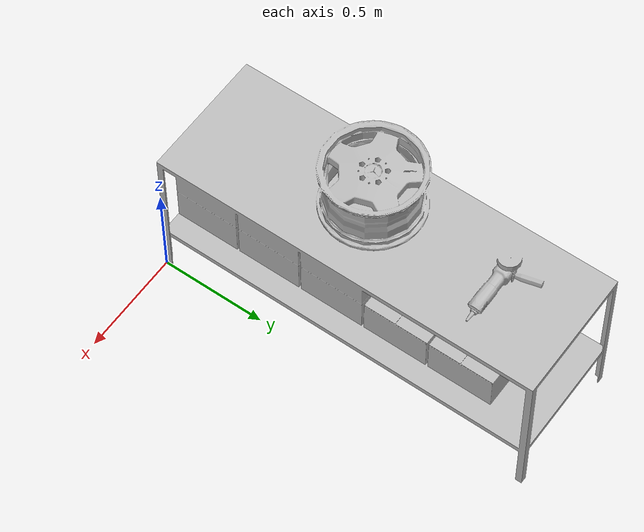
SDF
<?xml version="1.0" ?>
<sdf version="1.6">
  <model name="polishing_table">
    <static>true</static>
    <link name="link">
      <visual name="visual">
        <geometry>
          <mesh>
            <uri>model://polishing_table/meshes/polishing_table.obj</uri>
          </mesh>
        </geometry>
      </visual>
      <collision name="collision">
        <geometry>
          <mesh>
            <uri>model://polishing_table/meshes/polishing_table.obj</uri>
          </mesh>
        </geometry>
      </collision>
    </link>
  </model>
</sdf>
